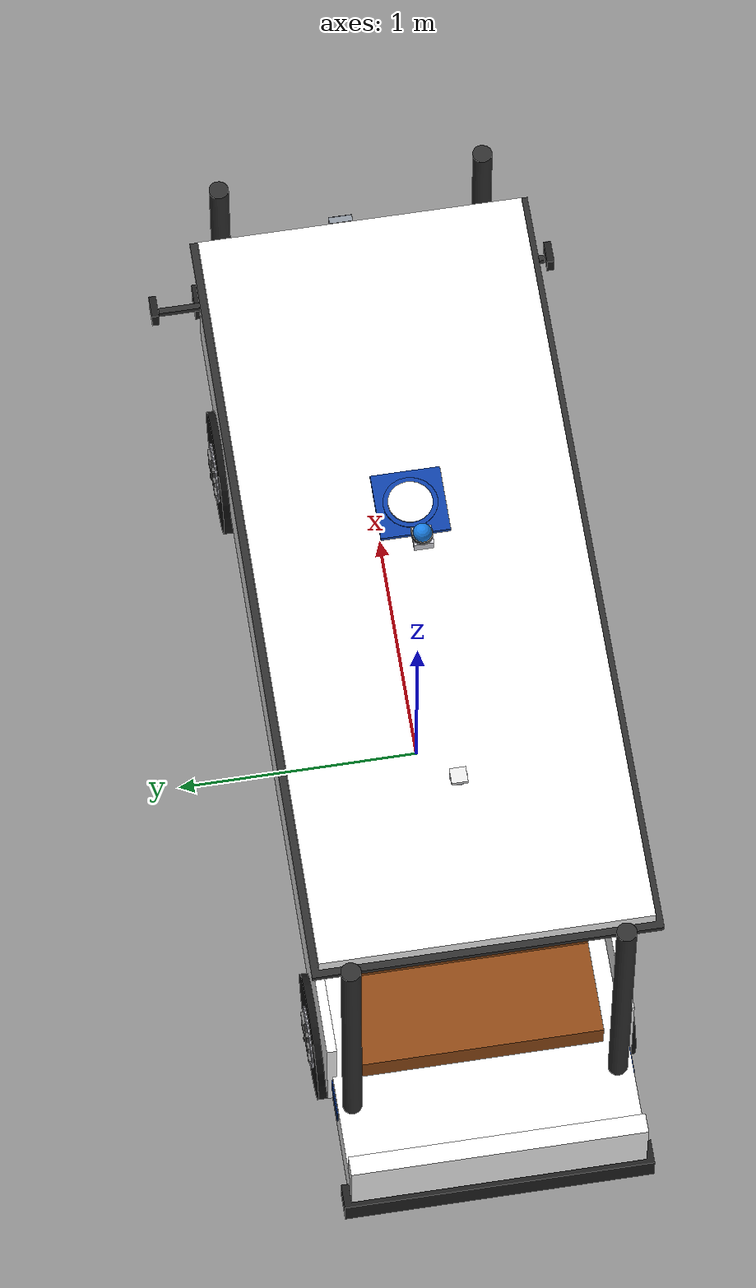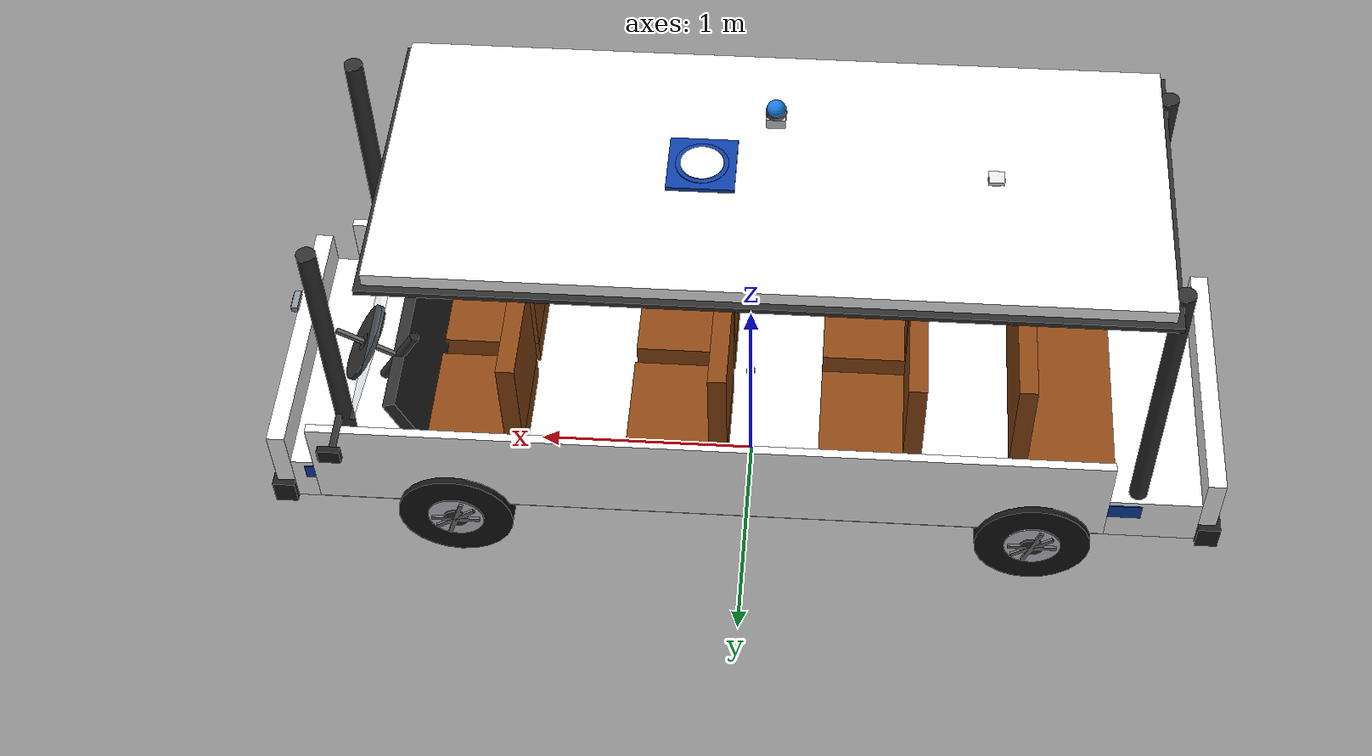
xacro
<?xml version="1.0"?>
<robot name="srm_aquila_buggy" xmlns:xacro="http://www.ros.org/wiki/xacro">

  <!-- ═══════════════════════════════
       PROPERTIES
  ═══════════════════════════════ -->
  <xacro:property name="cl"   value="4.12"/>   <!-- chassis length -->
  <xacro:property name="cw"   value="1.20"/>   <!-- chassis width  -->
  <xacro:property name="ch"   value="0.25"/>   <!-- chassis height -->
  <xacro:property name="cz"   value="0.425"/>  <!-- ride height (base_link above ground) -->

  <xacro:property name="wr"   value="0.26"/>   <!-- wheel radius -->
  <xacro:property name="ww"   value="0.205"/>  <!-- wheel width  -->

  <xacro:property name="pillar_h"  value="1.35"/>
  <xacro:property name="pillar_cz" value="0.80"/>
  <xacro:property name="pillar_r"  value="0.04"/>

  <!-- Roof: sits at 1.475m above base_link (1.9m total height - 0.425 ride height) -->
  <xacro:property name="roof_z"  value="1.475"/>
  <xacro:property name="roof_t"  value="0.06"/>

  <!-- Seat geometry -->
  <xacro:property name="sl"  value="0.45"/>
  <xacro:property name="sw"  value="0.48"/>
  <xacro:property name="sh"  value="0.12"/>
  <xacro:property name="brh" value="0.50"/>
  <xacro:property name="brt" value="0.08"/>

  <!-- ═══════════════════════════════
       MATERIALS
  ═══════════════════════════════ -->
  <material name="white">        <color rgba="0.96 0.96 0.96 1.0"/></material>
  <material name="srm_blue">     <color rgba="0.05 0.25 0.65 1.0"/></material>
  <material name="dark_grey">    <color rgba="0.18 0.18 0.18 1.0"/></material>
  <material name="mid_grey">     <color rgba="0.45 0.45 0.45 1.0"/></material>
  <material name="chassis_blk">  <color rgba="0.12 0.12 0.12 1.0"/></material>
  <material name="brown">        <color rgba="0.55 0.28 0.08 1.0"/></material>
  <material name="black_tyre">   <color rgba="0.08 0.08 0.08 1.0"/></material>
  <material name="silver">       <color rgba="0.78 0.78 0.82 1.0"/></material>
  <material name="clear">        <color rgba="0.80 0.90 1.00 0.25"/></material>
  <material name="lidar_silver"> <color rgba="0.82 0.82 0.85 1.0"/></material>
  <material name="lidar_blue">   <color rgba="0.10 0.50 0.90 1.0"/></material>
  <material name="rs_grey">      <color rgba="0.55 0.58 0.62 1.0"/></material>
  <material name="rs_black">     <color rgba="0.10 0.10 0.12 1.0"/></material>
  <material name="lens_green">   <color rgba="0.20 0.65 0.35 1.0"/></material>
  <material name="pcb_green">    <color rgba="0.10 0.35 0.15 1.0"/></material>
  <material name="gps_white">    <color rgba="0.90 0.90 0.90 1.0"/></material>
  <material name="us_blue">      <color rgba="0.15 0.30 0.70 1.0"/></material>
  <material name="hl_white">     <color rgba="0.95 0.95 0.80 1.0"/></material>
  <material name="tl_red">       <color rgba="0.90 0.10 0.10 1.0"/></material>

  <!-- Inertial helper macro for visual-only links -->
  <xacro:macro name="tiny_inertial">
    <inertial>
      <mass value="0.01"/>
      <inertia ixx="0.0001" ixy="0" ixz="0" iyy="0.0001" iyz="0" izz="0.0001"/>
    </inertial>
  </xacro:macro>

  <!-- ═══════════════════════════════
       BASE FOOTPRINT
  ═══════════════════════════════ -->
  <link name="base_footprint"/>
  <joint name="base_joint" type="fixed">
    <parent link="base_footprint"/><child link="base_link"/>
    <origin xyz="0 0 ${cz}" rpy="0 0 0"/>
  </joint>

  <!-- ═══════════════════════════════
       CHASSIS
  ═══════════════════════════════ -->
  <link name="base_link">
    <visual>
      <geometry><box size="${cl} ${cw} ${ch}"/></geometry>
      <material name="white"/>
    </visual>
    <collision>
      <geometry><box size="${cl} ${cw} ${ch}"/></geometry>
    </collision>
    <inertial>
      <mass value="280.0"/>
      <origin xyz="0 0 0" rpy="0 0 0"/>
<inertia ixx="350" ixy="0" ixz="0" iyy="800" iyz="0" izz="900"/>
    </inertial>
  </link>
  <gazebo reference="base_link"><material>Gazebo/White</material></gazebo>

  <!-- SRM Blue accent stripes — flush with side faces -->
  <joint name="stripe_l_jt" type="fixed">
    <parent link="base_link"/><child link="stripe_l"/>
    <origin xyz="0.10 ${cw/2 + 0.002} 0.06" rpy="0 0 0"/>
  </joint>
  <link name="stripe_l">
    <visual><geometry><box size="${cl - 0.4} 0.005 0.08"/></geometry>
      <material name="srm_blue"/></visual>
    <xacro:tiny_inertial/>
  </link>
  <gazebo reference="stripe_l"><material>Gazebo/Blue</material></gazebo>

  <joint name="stripe_r_jt" type="fixed">
    <parent link="base_link"/><child link="stripe_r"/>
    <origin xyz="0.10 ${-(cw/2 + 0.002)} 0.06" rpy="0 0 0"/>
  </joint>
  <link name="stripe_r">
    <visual><geometry><box size="${cl - 0.4} 0.005 0.08"/></geometry>
      <material name="srm_blue"/></visual>
    <xacro:tiny_inertial/>
  </link>
  <gazebo reference="stripe_r"><material>Gazebo/Blue</material></gazebo>

  <!-- Frame rails -->
  <joint name="frame_l_jt" type="fixed">
    <parent link="base_link"/><child link="frame_l"/>
    <origin xyz="0 ${cw/2 - 0.08} ${-ch/2 - 0.03}" rpy="0 0 0"/>
  </joint>
  <link name="frame_l">
    <visual><geometry><box size="${cl} 0.06 0.05"/></geometry>
      <material name="dark_grey"/></visual>
    <xacro:tiny_inertial/>
  </link>

  <joint name="frame_r_jt" type="fixed">
    <parent link="base_link"/><child link="frame_r"/>
    <origin xyz="0 ${-(cw/2 - 0.08)} ${-ch/2 - 0.03}" rpy="0 0 0"/>
  </joint>
  <link name="frame_r">
    <visual><geometry><box size="${cl} 0.06 0.05"/></geometry>
      <material name="dark_grey"/></visual>
    <xacro:tiny_inertial/>
  </link>

  <!-- ── Body panels ── -->
  <joint name="front_panel_jt" type="fixed">
    <parent link="base_link"/><child link="front_panel"/>
    <origin xyz="${cl/2} 0 0.10" rpy="0 0 0"/>
  </joint>
  <link name="front_panel">
    <visual><geometry><box size="0.08 ${cw} 0.38"/></geometry>
      <material name="white"/></visual>
    <xacro:tiny_inertial/>
  </link>
  <gazebo reference="front_panel"><material>Gazebo/White</material></gazebo>

  <!-- Front bumper (black) -->
  <joint name="front_bump_jt" type="fixed">
    <parent link="base_link"/><child link="front_bump"/>
    <origin xyz="${cl/2 + 0.01} 0 ${-ch/2 + 0.05}" rpy="0 0 0"/>
  </joint>
  <link name="front_bump">
    <visual><geometry><box size="0.10 ${cw + 0.06} 0.12"/></geometry>
      <material name="chassis_blk"/></visual>
    <xacro:tiny_inertial/>
  </link>
  <gazebo reference="front_bump"><material>Gazebo/DarkGrey</material></gazebo>

  <!-- Rear panel -->
  <joint name="rear_panel_jt" type="fixed">
    <parent link="base_link"/><child link="rear_panel"/>
    <origin xyz="${-cl/2} 0 0.10" rpy="0 0 0"/>
  </joint>
  <link name="rear_panel">
    <visual><geometry><box size="0.08 ${cw} 0.35"/></geometry>
      <material name="white"/></visual>
    <xacro:tiny_inertial/>
  </link>

  <!-- Rear bumper (black) -->
  <joint name="rear_bump_jt" type="fixed">
    <parent link="base_link"/><child link="rear_bump"/>
    <origin xyz="${-cl/2 - 0.01} 0 ${-ch/2 + 0.05}" rpy="0 0 0"/>
  </joint>
  <link name="rear_bump">
    <visual><geometry><box size="0.10 ${cw + 0.06} 0.12"/></geometry>
      <material name="chassis_blk"/></visual>
    <xacro:tiny_inertial/>
  </link>

  <!-- Side panels -->
  <joint name="side_l_jt" type="fixed">
    <parent link="base_link"/><child link="side_l"/>
    <origin xyz="0.15 ${cw/2 + 0.002} 0.15" rpy="0 0 0"/>
  </joint>
  <link name="side_l">
    <visual><geometry><box size="${cl - 0.6} 0.04 0.48"/></geometry>
      <material name="white"/></visual>
    <xacro:tiny_inertial/>
  </link>

  <joint name="side_r_jt" type="fixed">
    <parent link="base_link"/><child link="side_r"/>
    <origin xyz="0.15 ${-(cw/2 + 0.002)} 0.15" rpy="0 0 0"/>
  </joint>
  <link name="side_r">
    <visual><geometry><box size="${cl - 0.6} 0.04 0.48"/></geometry>
      <material name="white"/></visual>
    <xacro:tiny_inertial/>
  </link>

  <!-- Front-left -->
  <joint name="pfl_jt" type="fixed">
    <parent link="base_link"/><child link="pfl"/>
    <origin xyz="${cl/2 - 0.32} ${cw/2 - 0.06} ${pillar_cz}" rpy="0 0 0"/>
  </joint>
  <link name="pfl">
    <visual><geometry><cylinder radius="${pillar_r}" length="${pillar_h}"/></geometry>
      <material name="dark_grey"/></visual>
    <xacro:tiny_inertial/>
  </link>
  <gazebo reference="pfl"><material>Gazebo/DarkGrey</material></gazebo>

  <!-- Front-right -->
  <joint name="pfr_jt" type="fixed">
    <parent link="base_link"/><child link="pfr"/>
    <origin xyz="${cl/2 - 0.32} ${-(cw/2 - 0.06)} ${pillar_cz}" rpy="0 0 0"/>
  </joint>
  <link name="pfr">
    <visual><geometry><cylinder radius="${pillar_r}" length="${pillar_h}"/></geometry>
      <material name="dark_grey"/></visual>
    <xacro:tiny_inertial/>
  </link>
  <gazebo reference="pfr"><material>Gazebo/DarkGrey</material></gazebo>

  <!-- Rear-left -->
  <joint name="prl_jt" type="fixed">
    <parent link="base_link"/><child link="prl"/>
    <origin xyz="${-(cl/2 - 0.32)} ${cw/2 - 0.06} ${pillar_cz}" rpy="0 0 0"/>
  </joint>
  <link name="prl">
    <visual><geometry><cylinder radius="${pillar_r}" length="${pillar_h}"/></geometry>
      <material name="dark_grey"/></visual>
    <xacro:tiny_inertial/>
  </link>
  <gazebo reference="prl"><material>Gazebo/DarkGrey</material></gazebo>

  <!-- Rear-right -->
  <joint name="prr_jt" type="fixed">
    <parent link="base_link"/><child link="prr"/>
    <origin xyz="${-(cl/2 - 0.32)} ${-(cw/2 - 0.06)} ${pillar_cz}" rpy="0 0 0"/>
  </joint>
  <link name="prr">
    <visual><geometry><cylinder radius="${pillar_r}" length="${pillar_h}"/></geometry>
      <material name="dark_grey"/></visual>
    <xacro:tiny_inertial/>
  </link>
  <gazebo reference="prr"><material>Gazebo/DarkGrey</material></gazebo>

  <!-- ═══════════════════════════════
       ROOF — sits exactly at pillar tops
       z = roof_z = 1.475m above base_link
  ═══════════════════════════════ -->
  <joint name="roof_jt" type="fixed">
    <parent link="base_link"/><child link="roof"/>
    <origin xyz="-0.10 0 ${roof_z}" rpy="0 0 0"/>
  </joint>
  <link name="roof">
    <visual>
      <geometry><box size="3.20 ${cw + 0.12} ${roof_t}"/></geometry>
      <material name="white"/>
    </visual>
    <collision>
      <geometry><box size="3.20 ${cw + 0.12} ${roof_t}"/></geometry>
    </collision>
    <inertial>
      <mass value="8.0"/>
      <inertia ixx="2" ixy="0" ixz="0" iyy="5" iyz="0" izz="6"/>
    </inertial>
  </link>
  <gazebo reference="roof"><material>Gazebo/White</material></gazebo>

  <!-- Roof dark trim -->
  <joint name="roof_trim_jt" type="fixed">
    <parent link="roof"/><child link="roof_trim"/>
    <origin xyz="0 0 ${-roof_t/2 - 0.012}" rpy="0 0 0"/>
  </joint>
  <link name="roof_trim">
    <visual><geometry><box size="3.26 ${cw + 0.18} 0.025"/></geometry>
      <material name="dark_grey"/></visual>
    <xacro:tiny_inertial/>
  </link>
  <gazebo reference="roof_trim"><material>Gazebo/DarkGrey</material></gazebo>

  <!-- ═══════════════════════════════
       SRM LOGO on roof top
  ═══════════════════════════════ -->
  <joint name="logo_jt" type="fixed">
    <parent link="roof"/><child link="logo"/>
    <origin xyz="0.3 0 ${roof_t/2 + 0.012}" rpy="0 0 0"/>
  </joint>
  <link name="logo">
    <visual><geometry><box size="0.28 0.28 0.018"/></geometry>
      <material name="srm_blue"/></visual>
    <xacro:tiny_inertial/>
  </link>
  <gazebo reference="logo"><material>Gazebo/Blue</material></gazebo>

  <joint name="logo_ring_jt" type="fixed">
    <parent link="roof"/><child link="logo_ring"/>
    <origin xyz="0.3 0 ${roof_t/2 + 0.020}" rpy="0 0 0"/>
  </joint>
  <link name="logo_ring">
    <visual><geometry><cylinder radius="0.11" length="0.008"/></geometry>
      <material name="srm_blue"/></visual>
    <xacro:tiny_inertial/>
  </link>

  <joint name="logo_circle_jt" type="fixed">
    <parent link="roof"/><child link="logo_circle"/>
    <origin xyz="0.3 0 ${roof_t/2 + 0.024}" rpy="0 0 0"/>
  </joint>
  <link name="logo_circle">
    <visual><geometry><cylinder radius="0.09" length="0.008"/></geometry>
      <material name="white"/></visual>
    <xacro:tiny_inertial/>
  </link>

  <!-- ═══════════════════════════════
       WINDSHIELD — slanted front glass
  ═══════════════════════════════ -->
  <joint name="ws_jt" type="fixed">
    <parent link="base_link"/><child link="windshield"/>
    <origin xyz="${cl/2 - 0.45} 0 0.72" rpy="0 -0.32 0"/>
  </joint>
  <link name="windshield">
    <visual><geometry><box size="0.02 ${cw - 0.06} 0.62"/></geometry>
      <material name="clear"/></visual>
    <xacro:tiny_inertial/>
  </link>

  <!-- ═══════════════════════════════
       DASHBOARD — dark panel at front
  ═══════════════════════════════ -->
  <joint name="dash_jt" type="fixed">
    <parent link="base_link"/><child link="dashboard"/>
    <origin xyz="${cl/2 - 0.58} 0 0.35" rpy="0 0.38 0"/>
  </joint>
  <link name="dashboard">
    <visual><geometry><box size="0.06 ${cw - 0.12} 0.32"/></geometry>
      <material name="dark_grey"/></visual>
    <xacro:tiny_inertial/>
  </link>
  <gazebo reference="dashboard"><material>Gazebo/DarkGrey</material></gazebo>

  <!-- ── STEERING — FIXED ──
       Column runs from dashboard upward-forward.
       Wheel is a flat disc at the top.
       All positioned relative to base_link.
  -->
  <!-- Steering column base -->
  <joint name="stcol_jt" type="fixed">
    <parent link="base_link"/><child link="stcol"/>
    <origin xyz="${cl/2 - 0.52} 0.25 0.48" rpy="0 -0.55 0"/>
  </joint>
  <link name="stcol">
    <visual><geometry><cylinder radius="0.022" length="0.32"/></geometry>
      <material name="dark_grey"/></visual>
    <xacro:tiny_inertial/>
  </link>

  <joint name="stwheel_jt" type="fixed">
    <parent link="base_link"/><child link="stwheel"/>
    <origin xyz="${cl/2 - 0.52 + 0.138} 0.25 ${0.48 + 0.083}" rpy="0 1.018 0"/>
  </joint>
  <link name="stwheel">
    <!-- Outer ring -->
    <visual>
      <geometry><cylinder radius="0.175" length="0.020"/></geometry>
      <material name="dark_grey"/>
    </visual>
    <!-- Inner hub -->
    <visual>
      <origin xyz="0 0 0" rpy="0 0 0"/>
      <geometry><cylinder radius="0.040" length="0.022"/></geometry>
      <material name="dark_grey"/>
    </visual>
    <!-- Spoke horizontal -->
    <visual>
      <geometry><box size="0.280 0.020 0.018"/></geometry>
      <material name="mid_grey"/>
    </visual>
    <!-- Spoke vertical -->
    <visual>
      <geometry><box size="0.018 0.020 0.280"/></geometry>
      <material name="mid_grey"/>
    </visual>
    <xacro:tiny_inertial/>
  </link>
  <gazebo reference="stwheel"><material>Gazebo/DarkGrey</material></gazebo>

  <!-- Left mirror — attaches to left pillar x-position, at z=0.50 -->
  <joint name="mir_l_jt" type="fixed">
    <parent link="base_link"/><child link="mir_l_arm"/>
    <origin xyz="${cl/2 - 0.32} ${cw/2 + 0.01} 0.50" rpy="0 0 0"/>
  </joint>
  <link name="mir_l_arm">
    <!-- Arm extending outward -->
    <visual>
      <origin xyz="0 0.10 0" rpy="0 0 0"/>
      <geometry><box size="0.025 0.20 0.025"/></geometry>
      <material name="dark_grey"/>
    </visual>
    <!-- Mirror head at end of arm -->
    <visual>
      <origin xyz="0 0.22 0.02" rpy="0 0 0"/>
      <geometry><box size="0.095 0.030 0.075"/></geometry>
      <material name="chassis_blk"/>
    </visual>
    <!-- Reflective glass face (silver) -->
    <visual>
      <origin xyz="0.050 0.220 0.020" rpy="0 0 0"/>
      <geometry><box size="0.004 0.025 0.065"/></geometry>
      <material name="silver"/>
    </visual>
    <xacro:tiny_inertial/>
  </link>

  <!-- Right mirror -->
  <joint name="mir_r_jt" type="fixed">
    <parent link="base_link"/><child link="mir_r_arm"/>
    <origin xyz="${cl/2 - 0.32} ${-(cw/2 + 0.01)} 0.50" rpy="0 0 0"/>
  </joint>
  <link name="mir_r_arm">
    <visual>
      <origin xyz="0 -0.10 0" rpy="0 0 0"/>
      <geometry><box size="0.025 0.20 0.025"/></geometry>
      <material name="dark_grey"/>
    </visual>
    <visual>
      <origin xyz="0 -0.22 0.02" rpy="0 0 0"/>
      <geometry><box size="0.095 0.030 0.075"/></geometry>
      <material name="chassis_blk"/>
    </visual>
    <visual>
      <origin xyz="0.050 -0.220 0.020" rpy="0 0 0"/>
      <geometry><box size="0.004 0.025 0.065"/></geometry>
      <material name="silver"/>
    </visual>
    <xacro:tiny_inertial/>
  </link>

  <!-- ═══════════════════════════════
       LIGHTS
  ═══════════════════════════════ -->
  <!-- Headlights — square LED style, front face -->
  <joint name="hl_l_jt" type="fixed">
    <parent link="base_link"/><child link="hl_l"/>
    <origin xyz="${cl/2 + 0.01} 0.33 0.15" rpy="0 1.5708 0"/>
  </joint>
  <link name="hl_l">
    <visual><geometry><box size="0.05 0.12 0.055"/></geometry>
      <material name="hl_white"/></visual>
    <xacro:tiny_inertial/>
  </link>
  <gazebo reference="hl_l"><material>Gazebo/Yellow</material></gazebo>

  <joint name="hl_r_jt" type="fixed">
    <parent link="base_link"/><child link="hl_r"/>
    <origin xyz="${cl/2 + 0.01} -0.33 0.15" rpy="0 1.5708 0"/>
  </joint>
  <link name="hl_r">
    <visual><geometry><box size="0.05 0.12 0.055"/></geometry>
      <material name="hl_white"/></visual>
    <xacro:tiny_inertial/>
  </link>
  <gazebo reference="hl_r"><material>Gazebo/Yellow</material></gazebo>

  <!-- Tail lights — red -->
  <joint name="tl_l_jt" type="fixed">
    <parent link="base_link"/><child link="tl_l"/>
    <origin xyz="${-cl/2 - 0.01} 0.36 0.12" rpy="0 1.5708 0"/>
  </joint>
  <link name="tl_l">
    <visual><geometry><box size="0.035 0.10 0.048"/></geometry>
      <material name="tl_red"/></visual>
    <xacro:tiny_inertial/>
  </link>
  <gazebo reference="tl_l"><material>Gazebo/Red</material></gazebo>

  <joint name="tl_r_jt" type="fixed">
    <parent link="base_link"/><child link="tl_r"/>
    <origin xyz="${-cl/2 - 0.01} -0.36 0.12" rpy="0 1.5708 0"/>
  </joint>
  <link name="tl_r">
    <visual><geometry><box size="0.035 0.10 0.048"/></geometry>
      <material name="tl_red"/></visual>
    <xacro:tiny_inertial/>
  </link>
  <gazebo reference="tl_r"><material>Gazebo/Red</material></gazebo>

  <!-- ═══════════════════════════════
       SEATS — Brown leather
       Gazebo material overrides ensure colour shows
  ═══════════════════════════════ -->
  <xacro:macro name="seat" params="name px py">
    <joint name="${name}_c_jt" type="fixed">
      <parent link="base_link"/><child link="${name}_c"/>
      <origin xyz="${px} ${py} ${ch/2 + sh/2}" rpy="0 0 0"/>
    </joint>
    <link name="${name}_c">
      <visual><geometry><box size="${sl} ${sw} ${sh}"/></geometry>
        <material name="brown"/></visual>
      <xacro:tiny_inertial/>
    </link>
    <gazebo reference="${name}_c"><material>Gazebo/Brown</material></gazebo>

    <joint name="${name}_b_jt" type="fixed">
      <parent link="base_link"/><child link="${name}_b"/>
      <origin xyz="${px - sl/2 + brt/2} ${py} ${ch/2 + sh + brh/2}" rpy="0 0 0"/>
    </joint>
    <link name="${name}_b">
      <visual><geometry><box size="${brt} ${sw} ${brh}"/></geometry>
        <material name="brown"/></visual>
      <xacro:tiny_inertial/>
    </link>
    <gazebo reference="${name}_b"><material>Gazebo/Brown</material></gazebo>
  </xacro:macro>

  <xacro:seat name="s1l" px="1.20"  py=" 0.28"/>
  <xacro:seat name="s1r" px="1.20"  py="-0.28"/>
  <xacro:seat name="s2l" px="0.30"  py=" 0.28"/>
  <xacro:seat name="s2r" px="0.30"  py="-0.28"/>
  <xacro:seat name="s3l" px="-0.55" py=" 0.28"/>
  <xacro:seat name="s3r" px="-0.55" py="-0.28"/>

  <!-- Rear bench -->
  <joint name="rear_c_jt" type="fixed">
    <parent link="base_link"/><child link="rear_c"/>
    <origin xyz="-1.40 0 ${ch/2 + sh/2}" rpy="0 0 0"/>
  </joint>
  <link name="rear_c">
    <visual><geometry><box size="${sl} ${cw - 0.20} ${sh}"/></geometry>
      <material name="brown"/></visual>
    <xacro:tiny_inertial/>
  </link>
  <gazebo reference="rear_c"><material>Gazebo/Brown</material></gazebo>

  <joint name="rear_b_jt" type="fixed">
    <parent link="base_link"/><child link="rear_b"/>
    <origin xyz="-1.20 0 ${ch/2 + sh + brh/2}" rpy="0 0 3.14159"/>
  </joint>
  <link name="rear_b">
    <visual><geometry><box size="${brt} ${cw - 0.20} ${brh}"/></geometry>
      <material name="brown"/></visual>
    <xacro:tiny_inertial/>
  </link>
  <gazebo reference="rear_b"><material>Gazebo/Brown</material></gazebo>

  <!-- ═══════════════════════════════
       WHEELS
  ═══════════════════════════════ -->
  <xacro:macro name="wheel" params="name px py side">
    <joint name="${name}_jt" type="continuous">
      <parent link="base_link"/><child link="${name}"/>
      <origin xyz="${px} ${py} ${-(ch/2 + 0.04)}" rpy="0 0 0"/>
      <axis xyz="0 1 0"/>
      <dynamics damping="0.5" friction="0.5"/>
    </joint>
    <link name="${name}">
      <visual>
        <origin rpy="1.5708 0 0"/>
        <geometry><cylinder radius="${wr}" length="${ww}"/></geometry>
        <material name="black_tyre"/>
      </visual>
      <visual>
        <origin rpy="1.5708 0 0"/>
        <geometry><cylinder radius="0.127" length="${ww + 0.01}"/></geometry>
        <material name="silver"/>
      </visual>
      <visual>
        <origin xyz="0 ${side*(ww/2 + 0.005)} 0" rpy="1.5708 0 0"/>
        <geometry><cylinder radius="0.055" length="0.018"/></geometry>
        <material name="dark_grey"/>
      </visual>
      <!-- 3 spokes -->
      <visual>
        <origin xyz="0 ${side*(ww/2 + 0.008)} 0" rpy="1.5708 0 0"/>
        <geometry><box size="0.22 0.018 0.018"/></geometry>
        <material name="mid_grey"/>
      </visual>
      <visual>
        <origin xyz="0 ${side*(ww/2 + 0.008)} 0" rpy="1.5708 0.628 0"/>
        <geometry><box size="0.22 0.018 0.018"/></geometry>
        <material name="mid_grey"/>
      </visual>
      <visual>
        <origin xyz="0 ${side*(ww/2 + 0.008)} 0" rpy="1.5708 1.257 0"/>
        <geometry><box size="0.22 0.018 0.018"/></geometry>
        <material name="mid_grey"/>
      </visual>
      <collision>
        <origin rpy="1.5708 0 0"/>
        <geometry><cylinder radius="${wr}" length="${ww}"/></geometry>
      </collision>
      <inertial>
        <mass value="12.0"/>
        <origin rpy="1.5708 0 0"/>
        <inertia ixx="0.4" ixy="0" ixz="0" iyy="0.4" iyz="0" izz="0.7"/>
      </inertial>
    </link>
<gazebo reference="${name}"><mu1>1.0</mu1><mu2>1.0</mu2><kp>1e6</kp><kd>100</kd><minDepth>0.001</minDepth><maxVel>1.0</maxVel><material>Gazebo/Black</material></gazebo>
  </xacro:macro>

  <xacro:wheel name="wfl" px=" 1.30" py=" 0.55" side=" 1"/>
  <xacro:wheel name="wfr" px=" 1.30" py="-0.55" side="-1"/>
  <xacro:wheel name="wrl" px="-1.30" py=" 0.55" side=" 1"/>
  <xacro:wheel name="wrr" px="-1.30" py="-0.55" side="-1"/>

  <joint name="lidar_jt" type="fixed">
    <parent link="base_link"/><child link="lidar_link"/>
    <!-- scan origin at 1.85m above base_link, offset -0.10 to align with roof -->
    <origin xyz="-0.10 0.0 1.85" rpy="0 0 0"/>
  </joint>
  <link name="lidar_link">
    <!-- Square silver base — sits on roof surface -->
    <visual>
      <origin xyz="0 0 -0.040" rpy="0 0 0"/>
      <geometry><box size="0.078 0.078 0.045"/></geometry>
      <material name="lidar_silver"/>
    </visual>
    <!-- Mounting ring -->
    <visual>
      <origin xyz="0 0 -0.010" rpy="0 0 0"/>
      <geometry><cylinder radius="0.042" length="0.014"/></geometry>
      <material name="mid_grey"/>
    </visual>
    <!-- Blue hemispherical dome — scan origin = top of this dome -->
    <visual>
      <origin xyz="0 0 0.005" rpy="0 0 0"/>
      <geometry><sphere radius="0.038"/></geometry>
      <material name="lidar_blue"/>
    </visual>
    <collision>
      <origin xyz="0 0 -0.020" rpy="0 0 0"/>
      <geometry><cylinder radius="0.048" length="0.10"/></geometry>
    </collision>
    <inertial>
      <mass value="0.1"/>
      <inertia ixx="0.001" ixy="0" ixz="0" iyy="0.001" iyz="0" izz="0.001"/>
    </inertial>
  </link>
  <gazebo reference="lidar_link"><material>Gazebo/Blue</material></gazebo>

  <joint name="camera_jt" type="fixed">
    <parent link="base_link"/><child link="camera_link"/>
    <origin xyz="${cl/2 - 0.02} 0.0 0.52" rpy="0 0 0"/>
  </joint>
  <link name="camera_link">
    <!-- Silver housing — wide horizontal bar (D435i shape) -->
    <visual>
      <origin xyz="0 0 0" rpy="0 0 0"/>
      <geometry><box size="0.028 0.098 0.028"/></geometry>
      <material name="rs_grey"/>
    </visual>
    <!-- Black front face -->
    <visual>
      <origin xyz="0.015 0 0" rpy="0 0 0"/>
      <geometry><box size="0.003 0.094 0.024"/></geometry>
      <material name="rs_black"/>
    </visual>
    <!-- IR left lens -->
    <visual>
      <origin xyz="0.017 -0.034 0" rpy="0 1.5708 0"/>
      <geometry><cylinder radius="0.007" length="0.004"/></geometry>
      <material name="dark_grey"/>
    </visual>
    <!-- RGB lens (green) -->
    <visual>
      <origin xyz="0.017 -0.009 0" rpy="0 1.5708 0"/>
      <geometry><cylinder radius="0.009" length="0.004"/></geometry>
      <material name="lens_green"/>
    </visual>
    <!-- IR right lens -->
    <visual>
      <origin xyz="0.017 0.016 0" rpy="0 1.5708 0"/>
      <geometry><cylinder radius="0.007" length="0.004"/></geometry>
      <material name="dark_grey"/>
    </visual>
    <!-- Dot projector -->
    <visual>
      <origin xyz="0.017 0.037 0" rpy="0 1.5708 0"/>
      <geometry><cylinder radius="0.005" length="0.003"/></geometry>
      <material name="dark_grey"/>
    </visual>
    <collision>
      <geometry><box size="0.028 0.098 0.028"/></geometry>
    </collision>
    <inertial>
      <mass value="0.07"/>
      <inertia ixx="0.001" ixy="0" ixz="0" iyy="0.001" iyz="0" izz="0.001"/>
    </inertial>
  </link>

  <!-- ═══════════════════════════════
       BNO055 IMU — inside chassis at centroid
  ═══════════════════════════════ -->
  <joint name="imu_jt" type="fixed">
    <parent link="base_link"/><child link="imu_link"/>
    <origin xyz="0.0 0.0 ${ch/2 + 0.05}" rpy="0 0 0"/>
  </joint>
  <link name="imu_link">
    <visual>
      <geometry><box size="0.038 0.028 0.005"/></geometry>
      <material name="pcb_green"/>
    </visual>
    <visual>
      <origin xyz="0 0 0.006" rpy="0 0 0"/>
      <geometry><box size="0.010 0.010 0.004"/></geometry>
      <material name="dark_grey"/>
    </visual>
    <inertial>
      <mass value="0.05"/>
      <inertia ixx="0.001" ixy="0" ixz="0" iyy="0.001" iyz="0" izz="0.001"/>
    </inertial>
  </link>

  <!-- ═══════════════════════════════
       U-BLOX GPS — on roof rear
       Attached to roof link so it moves with roof
  ═══════════════════════════════ -->
  <joint name="gps_jt" type="fixed">
    <parent link="roof"/><child link="gps_link"/>
    <origin xyz="-0.90 0.0 ${roof_t/2 + 0.010}" rpy="0 0 0"/>
  </joint>
  <link name="gps_link">
    <visual>
      <geometry><box size="0.065 0.065 0.015"/></geometry>
      <material name="gps_white"/>
    </visual>
    <visual>
      <origin xyz="0 0 -0.010" rpy="0 0 0"/>
      <geometry><cylinder radius="0.036" length="0.003"/></geometry>
      <material name="silver"/>
    </visual>
    <inertial>
      <mass value="0.05"/>
      <inertia ixx="0.001" ixy="0" ixz="0" iyy="0.001" iyz="0" izz="0.001"/>
    </inertial>
  </link>

  <!-- ═══════════════════════════════
       HC-SR04 ULTRASONIC x4
       Blue PCB + 2 silver transducer circles
  ═══════════════════════════════ -->
  <xacro:macro name="us_sensor" params="name px py yaw">
    <joint name="${name}_jt" type="fixed">
      <parent link="base_link"/><child link="${name}"/>
      <origin xyz="${px} ${py} ${-ch/2 + 0.10}" rpy="0 0 ${yaw}"/>
    </joint>
    <link name="${name}">
      <visual>
        <geometry><box size="0.018 0.048 0.018"/></geometry>
        <material name="us_blue"/>
      </visual>
      <visual>
        <origin xyz="0.012 -0.012 0" rpy="0 1.5708 0"/>
        <geometry><cylinder radius="0.008" length="0.006"/></geometry>
        <material name="silver"/>
      </visual>
      <visual>
        <origin xyz="0.012  0.012 0" rpy="0 1.5708 0"/>
        <geometry><cylinder radius="0.008" length="0.006"/></geometry>
        <material name="silver"/>
      </visual>
      <inertial>
        <mass value="0.02"/>
        <inertia ixx="0.001" ixy="0" ixz="0" iyy="0.001" iyz="0" izz="0.001"/>
      </inertial>
    </link>
  </xacro:macro>

  <xacro:us_sensor name="ultrasonic_front_link" px="${cl/2 - 0.04}" py="0.0"        yaw="0.0"/>
  <xacro:us_sensor name="ultrasonic_rear_link"  px="${-cl/2 + 0.04}" py="0.0"       yaw="3.14159"/>
  <xacro:us_sensor name="ultrasonic_left_link"  px="0.0"             py="${cw/2}"    yaw="1.5708"/>
  <xacro:us_sensor name="ultrasonic_right_link" px="0.0"             py="${-cw/2}"   yaw="-1.5708"/>

  <!-- ═══════════════════════════════
       GAZEBO SENSOR PLUGINS
  ═══════════════════════════════ -->

  <gazebo>
    <plugin name="diff_drive" filename="libgazebo_ros_diff_drive.so">
      <ros><namespace>/</namespace></ros>
      <left_joint>wrl_jt</left_joint>
      <right_joint>wrr_jt</right_joint>
      <wheel_separation>1.10</wheel_separation>
      <wheel_diameter>0.52</wheel_diameter>
      <max_wheel_torque>200</max_wheel_torque>
      <max_wheel_acceleration>1.0</max_wheel_acceleration>
      <publish_odom>true</publish_odom>
      <publish_odom_tf>true</publish_odom_tf>
      <publish_wheel_tf>false</publish_wheel_tf>
      <odometry_frame>odom</odometry_frame>
      <robot_base_frame>base_footprint</robot_base_frame>
      <command_topic>cmd_vel</command_topic>
      <odometry_topic>odom</odometry_topic>
      <ros_debug_level>na</ros_debug_level>
    </plugin>
  </gazebo>

  <gazebo reference="lidar_link">
    <sensor type="ray" name="lidar_sensor">
      <pose>0 0 0 0 0 0</pose>
      <visualize>true</visualize>
      <update_rate>10</update_rate>
      <ray>
        <scan>
          <horizontal>
            <samples>360</samples><resolution>1</resolution>
            <min_angle>-3.14159</min_angle><max_angle>3.14159</max_angle>
          </horizontal>
        </scan>
        <range><min>0.10</min><max>30.0</max><resolution>0.01</resolution></range>
        <noise><type>gaussian</type><mean>0.0</mean><stddev>0.005</stddev></noise>
      </ray>
      <plugin name="lidar_plugin" filename="libgazebo_ros_ray_sensor.so">
        <ros><namespace>/</namespace><remapping>~/out:=scan</remapping></ros>
        <output_type>sensor_msgs/LaserScan</output_type>
        <frame_name>lidar_link</frame_name>
      </plugin>
    </sensor>
  </gazebo>

  <gazebo reference="camera_link">
    <sensor type="camera" name="camera_sensor">
      <update_rate>30</update_rate>
      <visualize>true</visualize>
      <camera name="front_camera">
        <horizontal_fov>1.047</horizontal_fov>
        <image><width>640</width><height>480</height><format>R8G8B8</format></image>
        <clip><near>0.05</near><far>50.0</far></clip>
        <noise><type>gaussian</type><mean>0.0</mean><stddev>0.005</stddev></noise>
      </camera>
      <plugin name="camera_plugin" filename="libgazebo_ros_camera.so">
        <ros><namespace>/</namespace></ros>
        <camera_name>camera</camera_name>
        <image_topic_name>image_raw</image_topic_name>
        <camera_info_topic_name>camera_info</camera_info_topic_name>
        <frame_name>camera_link</frame_name>
      </plugin>
    </sensor>
  </gazebo>

  <gazebo reference="imu_link">
    <sensor name="imu_sensor" type="imu">
      <update_rate>100</update_rate>
      <plugin name="imu_plugin" filename="libgazebo_ros_imu_sensor.so">
        <ros><namespace>/</namespace><remapping>~/out:=imu/data</remapping></ros>
        <initial_orientation_as_reference>false</initial_orientation_as_reference>
        <frame_name>imu_link</frame_name>
      </plugin>
    </sensor>
  </gazebo>

  <gazebo reference="gps_link">
    <sensor name="gps_sensor" type="gps">
      <update_rate>1</update_rate>
      <plugin name="gps_plugin" filename="libgazebo_ros_gps_sensor.so">
        <ros><namespace>/</namespace><remapping>~/out:=gps/fix</remapping></ros>
        <frame_name>gps_link</frame_name>
      </plugin>
    </sensor>
  </gazebo>

  <gazebo reference="ultrasonic_front_link">
    <sensor type="ray" name="us_front">
      <update_rate>10</update_rate>
      <ray><scan><horizontal><samples>3</samples><resolution>1</resolution>
        <min_angle>-0.0524</min_angle><max_angle>0.0524</max_angle></horizontal></scan>
        <range><min>0.02</min><max>2.0</max><resolution>0.001</resolution></range>
      </ray>
      <plugin name="us_front_plugin" filename="libgazebo_ros_ray_sensor.so">
        <ros><namespace>/</namespace><remapping>~/out:=ultrasonic/front</remapping></ros>
        <output_type>sensor_msgs/LaserScan</output_type>
        <frame_name>ultrasonic_front_link</frame_name>
      </plugin>
    </sensor>
  </gazebo>

  <gazebo reference="ultrasonic_rear_link">
    <sensor type="ray" name="us_rear">
      <update_rate>10</update_rate>
      <ray><scan><horizontal><samples>3</samples><resolution>1</resolution>
        <min_angle>-0.0524</min_angle><max_angle>0.0524</max_angle></horizontal></scan>
        <range><min>0.02</min><max>2.0</max><resolution>0.001</resolution></range>
      </ray>
      <plugin name="us_rear_plugin" filename="libgazebo_ros_ray_sensor.so">
        <ros><namespace>/</namespace><remapping>~/out:=ultrasonic/rear</remapping></ros>
        <output_type>sensor_msgs/LaserScan</output_type>
        <frame_name>ultrasonic_rear_link</frame_name>
      </plugin>
    </sensor>
  </gazebo>

  <gazebo reference="ultrasonic_left_link">
    <sensor type="ray" name="us_left">
      <update_rate>10</update_rate>
      <ray><scan><horizontal><samples>3</samples><resolution>1</resolution>
        <min_angle>-0.0524</min_angle><max_angle>0.0524</max_angle></horizontal></scan>
        <range><min>0.02</min><max>2.0</max><resolution>0.001</resolution></range>
      </ray>
      <plugin name="us_left_plugin" filename="libgazebo_ros_ray_sensor.so">
        <ros><namespace>/</namespace><remapping>~/out:=ultrasonic/left</remapping></ros>
        <output_type>sensor_msgs/LaserScan</output_type>
        <frame_name>ultrasonic_left_link</frame_name>
      </plugin>
    </sensor>
  </gazebo>

  <gazebo reference="ultrasonic_right_link">
    <sensor type="ray" name="us_right">
      <update_rate>10</update_rate>
      <ray><scan><horizontal><samples>3</samples><resolution>1</resolution>
        <min_angle>-0.0524</min_angle><max_angle>0.0524</max_angle></horizontal></scan>
        <range><min>0.02</min><max>2.0</max><resolution>0.001</resolution></range>
      </ray>
      <plugin name="us_right_plugin" filename="libgazebo_ros_ray_sensor.so">
        <ros><namespace>/</namespace><remapping>~/out:=ultrasonic/right</remapping></ros>
        <output_type>sensor_msgs/LaserScan</output_type>
        <frame_name>ultrasonic_right_link</frame_name>
      </plugin>
    </sensor>
  </gazebo>

</robot>
